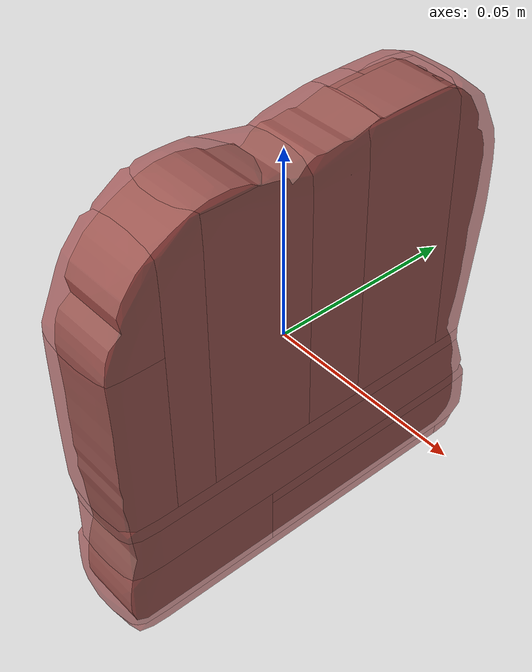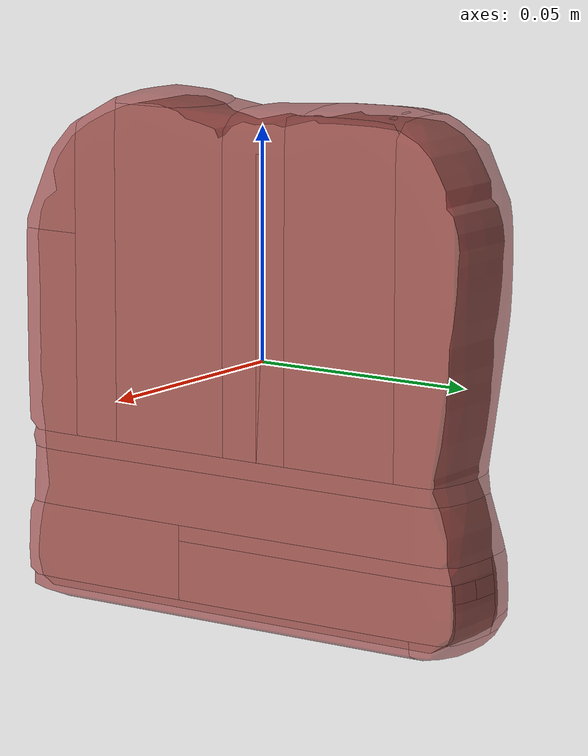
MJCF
<mujoco model="model">
  <option timestep="0.002" gravity="0.0 0.0 -9.81"/>
  <compiler angle="radian"/>
  <asset>
    <mesh file="visual/SandwichBread001.obj" name="SandwichBread001_vis"/>
    <texture file="visual/T_BC001.png" name="SandwichBread001_material" type="2d"/>
    <material name="SandwichBread001_material" rgba="1 1 1 1.0" texture="SandwichBread001_material" shininess="0.4472135901451111" specular="0.3103448502657381"/>
    <mesh file="collision/SandwichBread001002.obj" name="SandwichBread001002_mesh"/>
    <mesh file="collision/SandwichBread001013.obj" name="SandwichBread001013_mesh"/>
    <mesh file="collision/SandwichBread001007.obj" name="SandwichBread001007_mesh"/>
    <mesh file="collision/SandwichBread001009.obj" name="SandwichBread001009_mesh"/>
    <mesh file="collision/SandwichBread001006.obj" name="SandwichBread001006_mesh"/>
    <mesh file="collision/SandwichBread001019.obj" name="SandwichBread001019_mesh"/>
    <mesh file="collision/SandwichBread001020.obj" name="SandwichBread001020_mesh"/>
    <mesh file="collision/SandwichBread001008.obj" name="SandwichBread001008_mesh"/>
    <mesh file="collision/SandwichBread001030.obj" name="SandwichBread001030_mesh"/>
    <mesh file="collision/SandwichBread001004.obj" name="SandwichBread001004_mesh"/>
    <mesh file="collision/SandwichBread001016.obj" name="SandwichBread001016_mesh"/>
    <mesh file="collision/SandwichBread001026.obj" name="SandwichBread001026_mesh"/>
    <mesh file="collision/SandwichBread001021.obj" name="SandwichBread001021_mesh"/>
    <mesh file="collision/SandwichBread001024.obj" name="SandwichBread001024_mesh"/>
    <mesh file="collision/SandwichBread001018.obj" name="SandwichBread001018_mesh"/>
    <mesh file="collision/SandwichBread001015.obj" name="SandwichBread001015_mesh"/>
    <mesh file="collision/SandwichBread001001.obj" name="SandwichBread001001_mesh"/>
    <mesh file="collision/SandwichBread001003.obj" name="SandwichBread001003_mesh"/>
    <mesh file="collision/SandwichBread001014.obj" name="SandwichBread001014_mesh"/>
    <mesh file="collision/SandwichBread001022.obj" name="SandwichBread001022_mesh"/>
    <mesh file="collision/SandwichBread001028.obj" name="SandwichBread001028_mesh"/>
    <mesh file="collision/SandwichBread001011.obj" name="SandwichBread001011_mesh"/>
    <mesh file="collision/SandwichBread001012.obj" name="SandwichBread001012_mesh"/>
    <mesh file="collision/SandwichBread001017.obj" name="SandwichBread001017_mesh"/>
    <mesh file="collision/SandwichBread001023.obj" name="SandwichBread001023_mesh"/>
    <mesh file="collision/SandwichBread001005.obj" name="SandwichBread001005_mesh"/>
    <mesh file="collision/SandwichBread001029.obj" name="SandwichBread001029_mesh"/>
    <mesh file="collision/SandwichBread001027.obj" name="SandwichBread001027_mesh"/>
    <mesh file="collision/SandwichBread001025.obj" name="SandwichBread001025_mesh"/>
    <mesh file="collision/SandwichBread001010.obj" name="SandwichBread001010_mesh"/>
  </asset>
  <default>
    <default class="visual">
      <geom conaffinity="0" contype="0" group="1" type="mesh" quat="0.5 0.5 0.5 0.5"/>
    </default>
    <default class="collision">
      <geom group="0" rgba="0.5 0 0 0.5" density="1000.0" quat="0.5 0.5 0.5 0.5"/>
    </default>
    <default class="spawn">
      <geom group="0" rgba="1 1 1 0.5" contype="0" conaffinity="0"/>
      <site group="0" rgba="1 1 1 0.5"/>
    </default>
    <default class="region">
      <geom group="1" conaffinity="0" contype="0" rgba="0 1 0 0" mass="0"/>
    </default>
  </default>
  <worldbody>
    <body>
      <body name="object">
        <geom mesh="SandwichBread001_vis" type="mesh" solimp="0.998 0.998 0.001" solref="0.001 1" friction="0.95 0.3 0.1" class="visual" material="SandwichBread001_material"/>
        <geom mesh="SandwichBread001002_mesh" type="mesh" class="collision"/>
        <geom mesh="SandwichBread001013_mesh" type="mesh" class="collision"/>
        <geom mesh="SandwichBread001007_mesh" type="mesh" class="collision"/>
        <geom mesh="SandwichBread001009_mesh" type="mesh" class="collision"/>
        <geom mesh="SandwichBread001006_mesh" type="mesh" class="collision"/>
        <geom mesh="SandwichBread001019_mesh" type="mesh" class="collision"/>
        <geom mesh="SandwichBread001020_mesh" type="mesh" class="collision"/>
        <geom mesh="SandwichBread001008_mesh" type="mesh" class="collision"/>
        <geom mesh="SandwichBread001030_mesh" type="mesh" class="collision"/>
        <geom mesh="SandwichBread001004_mesh" type="mesh" class="collision"/>
        <geom mesh="SandwichBread001016_mesh" type="mesh" class="collision"/>
        <geom mesh="SandwichBread001026_mesh" type="mesh" class="collision"/>
        <geom mesh="SandwichBread001021_mesh" type="mesh" class="collision"/>
        <geom mesh="SandwichBread001024_mesh" type="mesh" class="collision"/>
        <geom mesh="SandwichBread001018_mesh" type="mesh" class="collision"/>
        <geom mesh="SandwichBread001015_mesh" type="mesh" class="collision"/>
        <geom mesh="SandwichBread001001_mesh" type="mesh" class="collision"/>
        <geom mesh="SandwichBread001003_mesh" type="mesh" class="collision"/>
        <geom mesh="SandwichBread001014_mesh" type="mesh" class="collision"/>
        <geom mesh="SandwichBread001022_mesh" type="mesh" class="collision"/>
        <geom mesh="SandwichBread001028_mesh" type="mesh" class="collision"/>
        <geom mesh="SandwichBread001011_mesh" type="mesh" class="collision"/>
        <geom mesh="SandwichBread001012_mesh" type="mesh" class="collision"/>
        <geom mesh="SandwichBread001017_mesh" type="mesh" class="collision"/>
        <geom mesh="SandwichBread001023_mesh" type="mesh" class="collision"/>
        <geom mesh="SandwichBread001005_mesh" type="mesh" class="collision"/>
        <geom mesh="SandwichBread001029_mesh" type="mesh" class="collision"/>
        <geom mesh="SandwichBread001027_mesh" type="mesh" class="collision"/>
        <geom mesh="SandwichBread001025_mesh" type="mesh" class="collision"/>
        <geom mesh="SandwichBread001010_mesh" type="mesh" class="collision"/>
        <geom class="region" name="reg_bbox" type="box" pos="-7.067499999999921e-05 0.0 -6.372999999999795e-05" size="0.01146018 0.05655731 0.056674005"/>
      </body>
    </body>
  </worldbody>
  <actuator/>
</mujoco>
